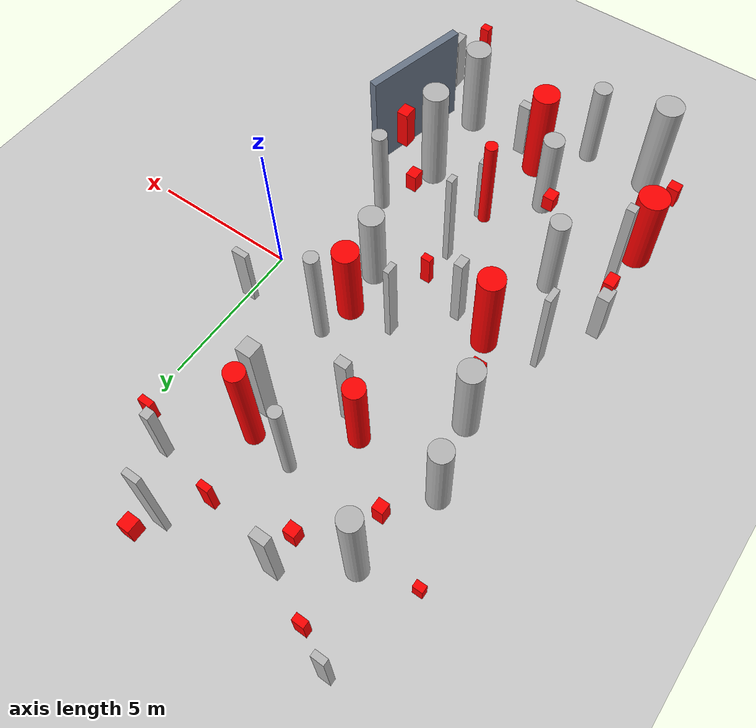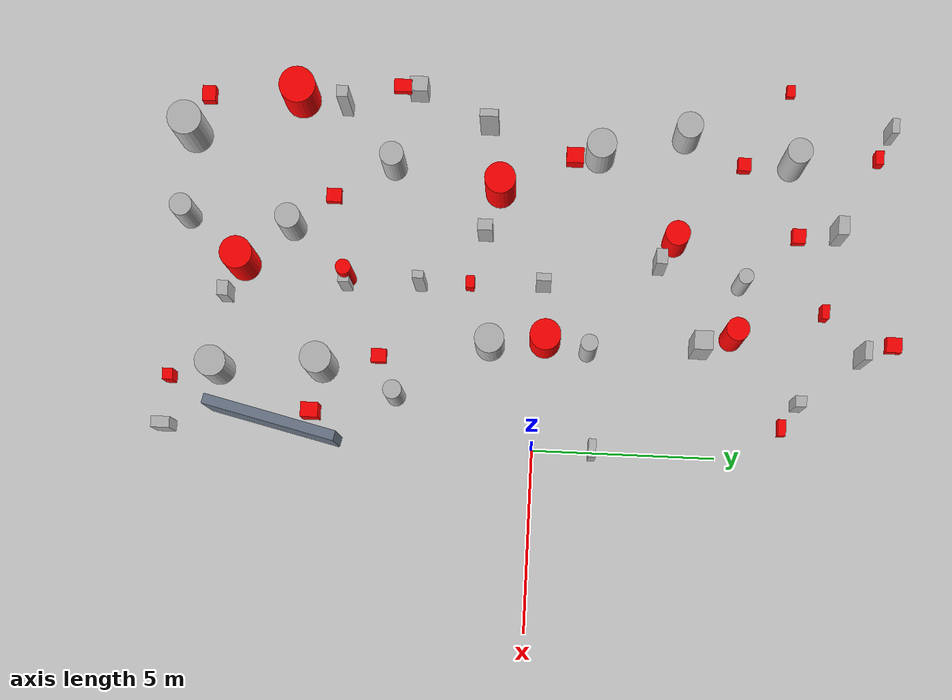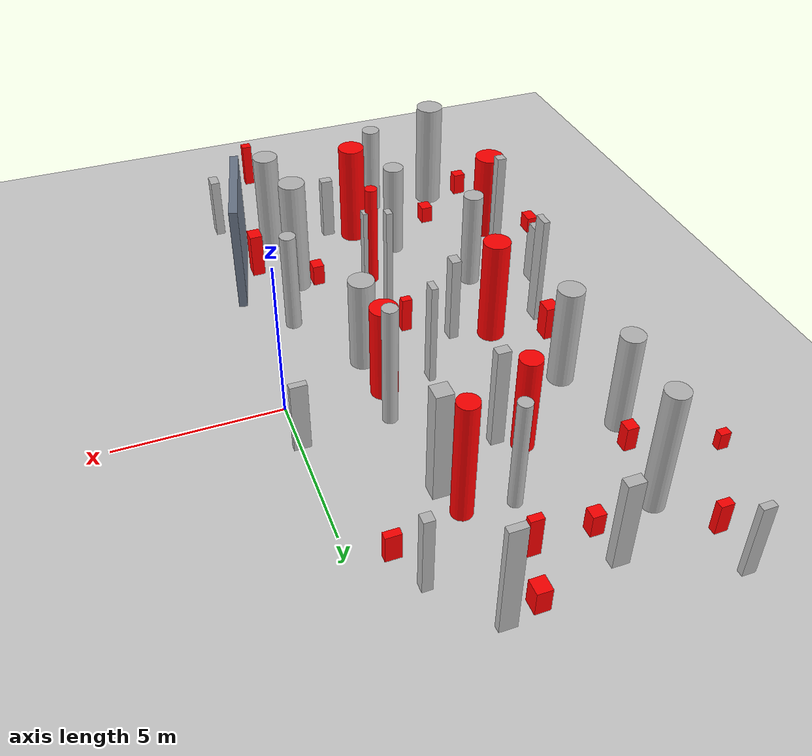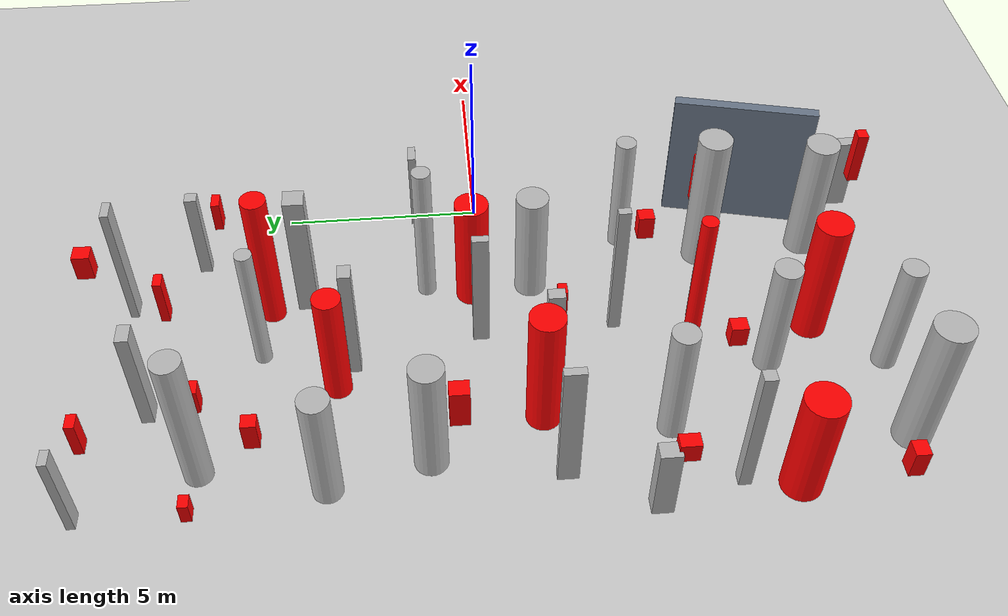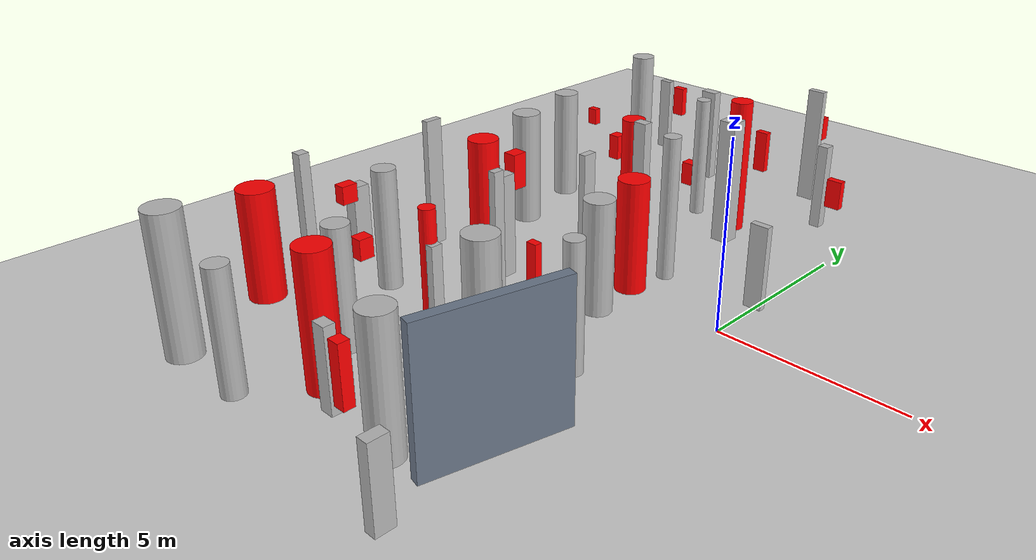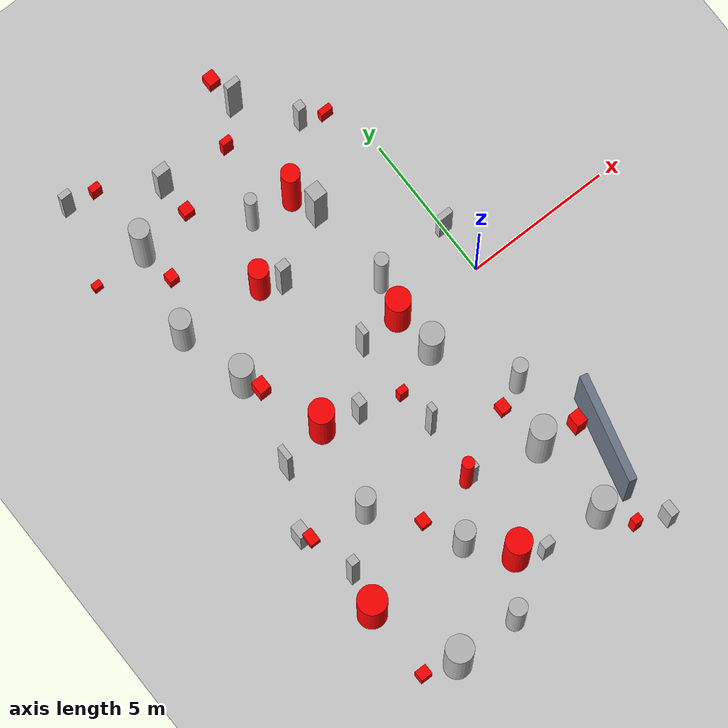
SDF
<sdf version="1.7">
 <world name="default">
  <model name="ground_plane">
   <static>1</static>
   <link name="link">
    <collision name="collision">
     <geometry><plane><normal>0 0 1</normal><size>100 100</size></plane></geometry>
     <surface>
      <contact><collide_bitmask>65535</collide_bitmask></contact>
      <friction><ode><mu>100</mu><mu2>50</mu2></ode></friction>
     </surface>
    </collision>
    <visual name="visual">
     <cast_shadows>0</cast_shadows>
     <geometry><plane><normal>0 0 1</normal><size>100 100</size></plane></geometry>
     <material>
      <script><uri>file://media/materials/scripts/gazebo.material</uri><name>Gazebo/Grey</name></script>
     </material>
    </visual>
   </link>
  </model>
  <model name="cylinder_3_0.9_0.9_3.8">
   <static>true</static>
   <pose>-8.257414005969185 -9.595632051193485 1.8890783754749252 0 0 0</pose>
   <link name="link">
    <collision name="collision">
     <geometry>
      <cylinder><radius>0.46100364447404574</radius><length>3.7781567509498504</length></cylinder>
     </geometry>
    </collision>
    <visual name="visual">
     <geometry>
      <cylinder><radius>0.46100364447404574</radius><length>3.7781567509498504</length></cylinder>
     </geometry>
    </visual>
   </link>
  </model>
  <model name="cylinder_6_0.4_0.4_3.6">
   <static>true</static>
   <pose>-4.70888775790746 5.484673788684333 1.7842169744343241 0 0 0</pose>
   <link name="link">
    <collision name="collision">
     <geometry>
      <cylinder><radius>0.20563694013090655</radius><length>3.5684339488686483</length></cylinder>
     </geometry>
    </collision>
    <visual name="visual">
     <geometry>
      <cylinder><radius>0.20563694013090655</radius><length>3.5684339488686483</length></cylinder>
     </geometry>
    </visual>
   </link>
  </model>
  <model name="cylinder_8_0.8_0.8_3.1">
   <static>true</static>
   <pose>-2.80984198852428 -1.259360924013171 1.530112735814635 0 0 0</pose>
   <link name="link">
    <collision name="collision">
     <geometry><cylinder><radius>0.4000300146337003</radius><length>3.06022547162927</length></cylinder></geometry>
    </collision>
    <visual name="visual">
     <geometry><cylinder><radius>0.4000300146337003</radius><length>3.06022547162927</length></cylinder></geometry>
    </visual>
   </link>
  </model>
  <model name="cylinder_9_0.5_0.5_4.0">
   <static>true</static>
   <pose>-2.725784581147548 1.4039354083575928 1.994186919029613 0 0 0</pose>
   <link name="link">
    <collision name="collision">
     <geometry>
      <cylinder><radius>0.23061344322440844</radius><length>3.988373838059226</length></cylinder>
     </geometry>
    </collision>
    <visual name="visual">
     <geometry>
      <cylinder><radius>0.23061344322440844</radius><length>3.988373838059226</length></cylinder>
     </geometry>
    </visual>
   </link>
  </model>
  <model name="cylinder_10_0.7_0.7_3.3">
   <static>true</static>
   <pose>-5.822464878103306 -6.773809642300074 1.626645801269891 0 0 0</pose>
   <link name="link">
    <collision name="collision">
     <geometry>
      <cylinder><radius>0.3398932318568919</radius><length>3.253291602539782</length></cylinder>
     </geometry>
    </collision>
    <visual name="visual">
     <geometry>
      <cylinder><radius>0.3398932318568919</radius><length>3.253291602539782</length></cylinder>
     </geometry>
    </visual>
   </link>
  </model>
  <model name="cylinder_11_0.7_0.7_4.0">
   <static>true</static>
   <pose>-8.057974484138775 6.758898149976078 1.988229732506698 0 0 0</pose>
   <link name="link">
    <collision name="collision">
     <geometry>
      <cylinder><radius>0.3405953604943105</radius><length>3.976459465013396</length></cylinder>
     </geometry>
    </collision>
    <visual name="visual">
     <geometry>
      <cylinder><radius>0.3405953604943105</radius><length>3.976459465013396</length></cylinder>
     </geometry>
    </visual>
   </link>
  </model>
  <model name="cylinder_13_0.6_0.6_3.3">
   <static>true</static>
   <pose>-7.596068775736622 -4.077196049557101 1.658991589696988 0 0 0</pose>
   <link name="link">
    <collision name="collision">
     <geometry><cylinder><radius>0.324278898354401</radius><length>3.317983179393976</length></cylinder></geometry>
    </collision>
    <visual name="visual">
     <geometry><cylinder><radius>0.324278898354401</radius><length>3.317983179393976</length></cylinder></geometry>
    </visual>
   </link>
  </model>
  <model name="cylinder_14_0.7_0.7_3.3">
   <static>true</static>
   <pose>-8.717050073024312 3.849442387400397 1.6326947454697227 0 0 0</pose>
   <link name="link">
    <collision name="collision">
     <geometry>
      <cylinder><radius>0.3569744160400099</radius><length>3.2653894909394454</length></cylinder>
     </geometry>
    </collision>
    <visual name="visual">
     <geometry>
      <cylinder><radius>0.3569744160400099</radius><length>3.2653894909394454</length></cylinder>
     </geometry>
    </visual>
   </link>
  </model>
  <model name="cylinder_15_0.8_0.8_3.3">
   <static>true</static>
   <pose>-8.121189784831166 1.5189299111235854 1.6592844762256618 0 0 0</pose>
   <link name="link">
    <collision name="collision">
     <geometry>
      <cylinder><radius>0.4002231139891045</radius><length>3.3185689524513236</length></cylinder>
     </geometry>
    </collision>
    <visual name="visual">
     <geometry>
      <cylinder><radius>0.4002231139891045</radius><length>3.3185689524513236</length></cylinder>
     </geometry>
    </visual>
   </link>
  </model>
  <model name="cylinder_22_0.8_0.8_3.5">
   <static>true</static>
   <pose>-1.8563340554800067 -8.61666009089724 1.7267713413390344 0 0 0</pose>
   <link name="link">
    <collision name="collision">
     <geometry>
      <cylinder><radius>0.4166166798411044</radius><length>3.453542682678069</length></cylinder>
     </geometry>
    </collision>
    <visual name="visual">
     <geometry>
      <cylinder><radius>0.4166166798411044</radius><length>3.453542682678069</length></cylinder>
     </geometry>
    </visual>
   </link>
  </model>
  <model name="cylinder_24_0.6_0.6_3.2">
   <static>true</static>
   <pose>-6.000069502071998 -9.62956411078772 1.61196234403019 0 0 0</pose>
   <link name="link">
    <collision name="collision">
     <geometry>
      <cylinder><radius>0.30360550420907084</radius><length>3.22392468806038</length></cylinder>
     </geometry>
    </collision>
    <visual name="visual">
     <geometry>
      <cylinder><radius>0.30360550420907084</radius><length>3.22392468806038</length></cylinder>
     </geometry>
    </visual>
   </link>
  </model>
  <model name="cylinder_26_0.8_0.8_3.9">
   <static>true</static>
   <pose>-2.0355787556781624 -5.803125020497557 1.9721861949919668 0 0 0</pose>
   <link name="link">
    <collision name="collision">
     <geometry>
      <cylinder><radius>0.42186523851478624</radius><length>3.9443723899839336</length></cylinder>
     </geometry>
    </collision>
    <visual name="visual">
     <geometry>
      <cylinder><radius>0.42186523851478624</radius><length>3.9443723899839336</length></cylinder>
     </geometry>
    </visual>
   </link>
  </model>
  <model name="cylinder_27_0.5_0.5_3.4">
   <static>true</static>
   <pose>-1.3116674888375845 -3.7640823601179485 1.6888759196462404 0 0 0</pose>
   <link name="link">
    <collision name="collision">
     <geometry>
      <cylinder><radius>0.25388110326789043</radius><length>3.377751839292481</length></cylinder>
     </geometry>
    </collision>
    <visual name="visual">
     <geometry>
      <cylinder><radius>0.25388110326789043</radius><length>3.377751839292481</length></cylinder>
     </geometry>
    </visual>
   </link>
  </model>
  <model name="box_0_0.3_0.4_2.9">
   <static>true</static>
   <pose>-5.850598491177812 -1.5062906249698749 1.4635754243648107 0 0 0</pose>
   <link name="link">
    <collision name="collision"><geometry><box><size>0.3 0.4 2.9</size></box></geometry></collision>
    <visual name="visual"><geometry><box><size>0.3 0.4 2.9</size></box></geometry></visual>
   </link>
  </model>
  <model name="box_2_0.5_0.2_3.5">
   <static>true</static>
   <pose>-2.8877452430008876 8.808638905056261 1.7486636198505474 0 0 0</pose>
   <link name="link">
    <collision name="collision"><geometry><box><size>0.5 0.2 3.5</size></box></geometry></collision>
    <visual name="visual"><geometry><box><size>0.5 0.2 3.5</size></box></geometry></visual>
   </link>
  </model>
  <model name="box_5_0.5_0.3_2.9">
   <static>true</static>
   <pose>-6.257382164983105 8.07967909856474 1.4569114216457657 0 0 0</pose>
   <link name="link">
    <collision name="collision"><geometry><box><size>0.5 0.3 2.9</size></box></geometry></collision>
    <visual name="visual"><geometry><box><size>0.5 0.3 2.9</size></box></geometry></visual>
   </link>
  </model>
  <model name="box_6_0.2_0.5_3.7">
   <static>true</static>
   <pose>-8.745740959533086 -1.519354962203161 1.849038308428511 0 0 0</pose>
   <link name="link">
    <collision name="collision"><geometry><box><size>0.2 0.5 3.7</size></box></geometry></collision>
    <visual name="visual"><geometry><box><size>0.2 0.5 3.7</size></box></geometry></visual>
   </link>
  </model>
  <model name="box_8_0.4_0.3_3.3">
   <static>true</static>
   <pose>-5.17162759846852 3.250091430653519 1.6658591175591877 0 0 0</pose>
   <link name="link">
    <collision name="collision"><geometry><box><size>0.4 0.3 3.3</size></box></geometry></collision>
    <visual name="visual"><geometry><box><size>0.4 0.3 3.3</size></box></geometry></visual>
   </link>
  </model>
  <model name="box_12_0.3_0.3_2.7">
   <static>true</static>
   <pose>-4.320000464757978 -5.23173438151884 1.3679275805370414 0 0 0</pose>
   <link name="link">
    <collision name="collision"><geometry><box><size>0.3 0.3 2.7</size></box></geometry></collision>
    <visual name="visual"><geometry><box><size>0.3 0.3 2.7</size></box></geometry></visual>
   </link>
  </model>
  <model name="box_13_0.5_0.5_3.6">
   <static>true</static>
   <pose>-2.962140076139148 4.428133359199049 1.8130538632474607 0 0 0</pose>
   <link name="link">
    <collision name="collision"><geometry><box><size>0.5 0.5 3.6</size></box></geometry></collision>
    <visual name="visual"><geometry><box><size>0.5 0.5 3.6</size></box></geometry></visual>
   </link>
  </model>
  <model name="box_14_0.5_0.2_2.3">
   <static>true</static>
   <pose>-0.04446184349316429 1.6216385934412614 1.1690254061291614 0 0 0</pose>
   <link name="link">
    <collision name="collision"><geometry><box><size>0.5 0.2 2.3</size></box></geometry></collision>
    <visual name="visual"><geometry><box><size>0.5 0.2 2.3</size></box></geometry></visual>
   </link>
  </model>
  <model name="box_15_0.3_0.3_2.5">
   <static>true</static>
   <pose>-1.5258729308905439 7.142498350091346 1.271252076761864 0 0 0</pose>
   <link name="link">
    <collision name="collision"><geometry><box><size>0.3 0.3 2.5</size></box></geometry></collision>
    <visual name="visual"><geometry><box><size>0.3 0.3 2.5</size></box></geometry></visual>
   </link>
  </model>
  <model name="box_19_0.4_0.2_2.4">
   <static>true</static>
   <pose>-9.063872905756226 9.414628855412657 1.1785799680576563 0 0 0</pose>
   <link name="link">
    <collision name="collision"><geometry><box><size>0.4 0.2 2.4</size></box></geometry></collision>
    <visual name="visual"><geometry><box><size>0.4 0.2 2.4</size></box></geometry></visual>
   </link>
  </model>
  <model name="box_20_0.4_0.3_2.2">
   <static>true</static>
   <pose>-3.9160261680118436 -8.492818618333192 1.107617705149582 0 0 0</pose>
   <link name="link">
    <collision name="collision"><geometry><box><size>0.4 0.3 2.2</size></box></geometry></collision>
    <visual name="visual"><geometry><box><size>0.4 0.3 2.2</size></box></geometry></visual>
   </link>
  </model>
  <model name="box_21_0.3_0.5_2.1">
   <static>true</static>
   <pose>-0.24647352923584886 -9.989080702060086 1.0635537748361585 0 0 0</pose>
   <link name="link">
    <collision name="collision"><geometry><box><size>0.3 0.5 2.1</size></box></geometry></collision>
    <visual name="visual"><geometry><box><size>0.3 0.5 2.1</size></box></geometry></visual>
   </link>
  </model>
  <model name="box_22_0.2_0.3_3.9">
   <static>true</static>
   <pose>-4.343262956478342 -3.207379116676017 1.96319729526038 0 0 0</pose>
   <link name="link">
    <collision name="collision"><geometry><box><size>0.2 0.3 3.9</size></box></geometry></collision>
    <visual name="visual"><geometry><box><size>0.2 0.3 3.9</size></box></geometry></visual>
   </link>
  </model>
  <model name="box_26_0.2_0.4_3.4">
   <static>true</static>
   <pose>-4.467005395816209 0.12685838647608305 1.706410577667011 0 0 0</pose>
   <link name="link">
    <collision name="collision"><geometry><box><size>0.2 0.4 3.4</size></box></geometry></collision>
    <visual name="visual"><geometry><box><size>0.2 0.4 3.4</size></box></geometry></visual>
   </link>
  </model>
  <model name="box_28_0.3_0.3_3.7">
   <static>true</static>
   <pose>-9.152719058171135 -5.44518013305427 1.8369903652886839 0 0 0</pose>
   <link name="link">
    <collision name="collision"><geometry><box><size>0.3 0.3 3.7</size></box></geometry></collision>
    <visual name="visual"><geometry><box><size>0.3 0.3 3.7</size></box></geometry></visual>
   </link>
  </model>
  <model name="box_29_0.4_0.5_2.1">
   <static>true</static>
   <pose>-9.68523520659075 -3.4829031599240756 1.028362934230075 0 0 0</pose>
   <link name="link">
    <collision name="collision"><geometry><box><size>0.4 0.5 2.1</size></box></geometry></collision>
    <visual name="visual"><geometry><box><size>0.4 0.5 2.1</size></box></geometry></visual>
   </link>
  </model>
  <model name="large_single_wall_00">
   <static>true</static>
   <link name="link">
    <collision name="collision_0">
     <pose>-0.420944 -6.982706 1.804843 0 0 1.336323</pose>
     <geometry><box><size>3.624977 0.273582 3.609686</size></box></geometry>
    </collision>
    <visual name="visual_0">
     <pose>-0.420944 -6.982706 1.804843 0 0 1.336323</pose>
     <geometry><box><size>3.624977 0.273582 3.609686</size></box></geometry>
     <material>
      <ambient>0.32 0.36 0.42 1</ambient>
      <diffuse>0.42 0.47 0.54 1</diffuse>
      <specular>0.12 0.12 0.12 1</specular>
     </material>
    </visual>
   </link>
  </model>
  <model name="dynamic_cylinder_1_0.4_0.4_3.6">
   <static>true</static>
   <pose>-4.486693441602288 -5.208399215121817 1.7831309271400164 0 0 0</pose>
   <link name="link">
    <collision name="collision">
     <geometry>
      <cylinder><radius>0.20545190578287137</radius><length>3.566261854280033</length></cylinder>
     </geometry>
    </collision>
    <visual name="visual">
     <geometry>
      <cylinder><radius>0.20545190578287137</radius><length>3.566261854280033</length></cylinder>
     </geometry>
     <material><ambient>1 0 0 1</ambient><diffuse>1 0 0 1</diffuse><specular>0.5 0.5 0.5 1</specular></material>
    </visual>
   </link>
   <plugin name="obstacle_motion" filename="libobstaclePathPlugin.so">
    <orientation>false</orientation>
    <loop>0</loop>
    <velocity>0.07923702594059778</velocity>
    <path>
     <waypoint>-4.486693441602288 -5.208399215121817 1.7831309271400164</waypoint>
     <waypoint>4.339501459630921 1.6896598752854475 1.7831309271400164</waypoint>
    </path>
   </plugin>
  </model>
  <model name="dynamic_cylinder_6_1.0_1.0_3.0">
   <static>true</static>
   <pose>-9.374149441804525 -6.697837452561595 1.5198916490142225 0 0 0</pose>
   <link name="link">
    <collision name="collision">
     <geometry>
      <cylinder><radius>0.49024821491047754</radius><length>3.039783298028445</length></cylinder>
     </geometry>
    </collision>
    <visual name="visual">
     <geometry>
      <cylinder><radius>0.49024821491047754</radius><length>3.039783298028445</length></cylinder>
     </geometry>
     <material><ambient>1 0 0 1</ambient><diffuse>1 0 0 1</diffuse><specular>0.5 0.5 0.5 1</specular></material>
    </visual>
   </link>
   <plugin name="obstacle_motion" filename="libobstaclePathPlugin.so">
    <orientation>false</orientation>
    <loop>0</loop>
    <velocity>0.013836251172974823</velocity>
    <path>
     <waypoint>-9.374149441804525 -6.697837452561595 1.5198916490142225</waypoint>
     <waypoint>1.8558258309793674 1.0282053830763949 1.5198916490142225</waypoint>
    </path>
   </plugin>
  </model>
  <model name="dynamic_cylinder_10_0.8_0.8_3.5">
   <static>true</static>
   <pose>-7.055046546560206 -1.151683692220038 1.7425484227156454 0 0 0</pose>
   <link name="link">
    <collision name="collision">
     <geometry>
      <cylinder><radius>0.4206228080077576</radius><length>3.4850968454312907</length></cylinder>
     </geometry>
    </collision>
    <visual name="visual">
     <geometry>
      <cylinder><radius>0.4206228080077576</radius><length>3.4850968454312907</length></cylinder>
     </geometry>
     <material><ambient>1 0 0 1</ambient><diffuse>1 0 0 1</diffuse><specular>0.5 0.5 0.5 1</specular></material>
    </visual>
   </link>
   <plugin name="obstacle_motion" filename="libobstaclePathPlugin.so">
    <orientation>false</orientation>
    <loop>0</loop>
    <velocity>0.6484137022418283</velocity>
    <path>
     <waypoint>-7.055046546560206 -1.151683692220038 1.7425484227156454</waypoint>
     <waypoint>7.20562473036609 2.558344863923381 1.7425484227156454</waypoint>
    </path>
   </plugin>
  </model>
  <model name="dynamic_cylinder_13_0.7_0.7_3.2">
   <static>true</static>
   <pose>-5.823467504325313 3.64859146735226 1.5801765726902441 0 0 0</pose>
   <link name="link">
    <collision name="collision">
     <geometry>
      <cylinder><radius>0.3353755884349526</radius><length>3.1603531453804883</length></cylinder>
     </geometry>
    </collision>
    <visual name="visual">
     <geometry>
      <cylinder><radius>0.3353755884349526</radius><length>3.1603531453804883</length></cylinder>
     </geometry>
     <material><ambient>1 0 0 1</ambient><diffuse>1 0 0 1</diffuse><specular>0.5 0.5 0.5 1</specular></material>
    </visual>
   </link>
   <plugin name="obstacle_motion" filename="libobstaclePathPlugin.so">
    <orientation>false</orientation>
    <loop>0</loop>
    <velocity>0.9641009397724625</velocity>
    <path>
     <waypoint>-5.823467504325313 3.64859146735226 1.5801765726902441</waypoint>
     <waypoint>-3.5847887617008234 1.1841880286207718 1.5801765726902441</waypoint>
    </path>
   </plugin>
  </model>
  <model name="dynamic_cylinder_16_0.8_0.8_3.1">
   <static>true</static>
   <pose>-2.9706258450502987 0.2361312013207395 1.550488139860272 0 0 0</pose>
   <link name="link">
    <collision name="collision">
     <geometry>
      <cylinder><radius>0.4194350747477036</radius><length>3.100976279720544</length></cylinder>
     </geometry>
    </collision>
    <visual name="visual">
     <geometry>
      <cylinder><radius>0.4194350747477036</radius><length>3.100976279720544</length></cylinder>
     </geometry>
     <material><ambient>1 0 0 1</ambient><diffuse>1 0 0 1</diffuse><specular>0.5 0.5 0.5 1</specular></material>
    </visual>
   </link>
   <plugin name="obstacle_motion" filename="libobstaclePathPlugin.so">
    <orientation>false</orientation>
    <loop>0</loop>
    <velocity>0.42064701703371876</velocity>
    <path>
     <waypoint>-2.9706258450502987 0.2361312013207395 1.550488139860272</waypoint>
     <waypoint>-6.503268735117818 8.721180410096128 1.550488139860272</waypoint>
    </path>
   </plugin>
  </model>
  <model name="dynamic_cylinder_17_0.6_0.6_3.9">
   <static>true</static>
   <pose>-3.2729868940614804 5.30917940664819 1.9476484183770708 0 0 0</pose>
   <link name="link">
    <collision name="collision">
     <geometry>
      <cylinder><radius>0.3118775288784784</radius><length>3.8952968367541416</length></cylinder>
     </geometry>
    </collision>
    <visual name="visual">
     <geometry>
      <cylinder><radius>0.3118775288784784</radius><length>3.8952968367541416</length></cylinder>
     </geometry>
     <material><ambient>1 0 0 1</ambient><diffuse>1 0 0 1</diffuse><specular>0.5 0.5 0.5 1</specular></material>
    </visual>
   </link>
   <plugin name="obstacle_motion" filename="libobstaclePathPlugin.so">
    <orientation>false</orientation>
    <loop>0</loop>
    <velocity>0.096256724624312</velocity>
    <path>
     <waypoint>-3.2729868940614804 5.30917940664819 1.9476484183770708</waypoint>
     <waypoint>-2.5292438569483133 4.160224801386612 1.9476484183770708</waypoint>
    </path>
   </plugin>
  </model>
  <model name="dynamic_cylinder_19_0.9_0.9_3.5">
   <static>true</static>
   <pose>-4.756429574118382 -8.07396395778449 1.7693759292218283 0 0 0</pose>
   <link name="link">
    <collision name="collision">
     <geometry><cylinder><radius>0.43641061061009</radius><length>3.5387518584436566</length></cylinder></geometry>
    </collision>
    <visual name="visual">
     <geometry><cylinder><radius>0.43641061061009</radius><length>3.5387518584436566</length></cylinder></geometry>
     <material><ambient>1 0 0 1</ambient><diffuse>1 0 0 1</diffuse><specular>0.5 0.5 0.5 1</specular></material>
    </visual>
   </link>
   <plugin name="obstacle_motion" filename="libobstaclePathPlugin.so">
    <orientation>false</orientation>
    <loop>0</loop>
    <velocity>0.8113770403016125</velocity>
    <path>
     <waypoint>-4.756429574118382 -8.07396395778449 1.7693759292218283</waypoint>
     <waypoint>-8.181481403592393 5.642707268488318 1.7693759292218283</waypoint>
    </path>
   </plugin>
  </model>
  <model name="dynamic_box_0_0.3_0.5_0.5">
   <static>true</static>
   <pose>-9.59026809460131 -3.8944367915790146 1.98426130539906 0 0 0</pose>
   <link name="link">
    <collision name="collision">
     <geometry><box><size>0.34233598166544 0.4729223803958809 0.5269902914316932</size></box></geometry>
    </collision>
    <visual name="visual">
     <geometry><box><size>0.34233598166544 0.4729223803958809 0.5269902914316932</size></box></geometry>
     <material><ambient>1 0 0 1</ambient><diffuse>1 0 0 1</diffuse><specular>0.5 0.5 0.5 1</specular></material>
    </visual>
   </link>
   <plugin name="obstacle_motion" filename="libobstaclePathPlugin.so">
    <orientation>false</orientation>
    <loop>0</loop>
    <velocity>0.6557324796954414</velocity>
    <path>
     <waypoint>-9.59026809460131 -3.8944367915790146 1.98426130539906</waypoint>
     <waypoint>6.070089964542937 4.930217199653201 0.30975191906728644</waypoint>
    </path>
   </plugin>
  </model>
  <model name="dynamic_box_1_0.4_0.4_0.7">
   <static>true</static>
   <pose>-2.307403679889213 -4.229499942742145 1.4834047590709418 0 0 0</pose>
   <link name="link">
    <collision name="collision">
     <geometry><box><size>0.3632213401066679 0.409211247715175 0.6821976449230329</size></box></geometry>
    </collision>
    <visual name="visual">
     <geometry><box><size>0.3632213401066679 0.409211247715175 0.6821976449230329</size></box></geometry>
     <material><ambient>1 0 0 1</ambient><diffuse>1 0 0 1</diffuse><specular>0.5 0.5 0.5 1</specular></material>
    </visual>
   </link>
   <plugin name="obstacle_motion" filename="libobstaclePathPlugin.so">
    <orientation>false</orientation>
    <loop>0</loop>
    <velocity>0.5628322226568963</velocity>
    <path>
     <waypoint>-2.307403679889213 -4.229499942742145 1.4834047590709418</waypoint>
     <waypoint>8.29388599099389 4.772774229245 2.0544313864201373</waypoint>
    </path>
   </plugin>
  </model>
  <model name="dynamic_box_2_0.4_0.2_1.3">
   <static>true</static>
   <pose>-3.9853487209369254 7.7398659407576 1.5496704012619382 0 0 0</pose>
   <link name="link">
    <collision name="collision">
     <geometry><box><size>0.37937631208115075 0.20753286145314295 1.2558082877570287</size></box></geometry>
    </collision>
    <visual name="visual">
     <geometry><box><size>0.37937631208115075 0.20753286145314295 1.2558082877570287</size></box></geometry>
     <material><ambient>1 0 0 1</ambient><diffuse>1 0 0 1</diffuse><specular>0.5 0.5 0.5 1</specular></material>
    </visual>
   </link>
   <plugin name="obstacle_motion" filename="libobstaclePathPlugin.so">
    <orientation>false</orientation>
    <loop>0</loop>
    <velocity>0.612838726216401</velocity>
    <path>
     <waypoint>-3.9853487209369254 7.7398659407576 1.5496704012619382</waypoint>
     <waypoint>-5.49169692523543 -3.5712282166991205 0.6334460571298782</waypoint>
    </path>
   </plugin>
  </model>
  <model name="dynamic_box_3_0.3_0.3_1.4">
   <static>true</static>
   <pose>-1.4578638308786362 -9.72436190750835 2.670507957357454 0 0 0</pose>
   <link name="link">
    <collision name="collision">
     <geometry><box><size>0.29941147724810857 0.26957421302425083 1.438075781711365</size></box></geometry>
    </collision>
    <visual name="visual">
     <geometry><box><size>0.29941147724810857 0.26957421302425083 1.438075781711365</size></box></geometry>
     <material><ambient>1 0 0 1</ambient><diffuse>1 0 0 1</diffuse><specular>0.5 0.5 0.5 1</specular></material>
    </visual>
   </link>
   <plugin name="obstacle_motion" filename="libobstaclePathPlugin.so">
    <orientation>false</orientation>
    <loop>0</loop>
    <velocity>0.8866992695426443</velocity>
    <path>
     <waypoint>-1.4578638308786362 -9.72436190750835 2.670507957357454</waypoint>
     <waypoint>-7.349380450192733 7.028453531844788 2.2824840641171873</waypoint>
    </path>
   </plugin>
  </model>
  <model name="dynamic_box_4_0.4_0.5_1.5">
   <static>true</static>
   <pose>-0.7465378984077287 -6.005921436019353 1.4718642153082862 0 0 0</pose>
   <link name="link">
    <collision name="collision">
     <geometry><box><size>0.39746237390806954 0.4728673705363477 1.471392821735408</size></box></geometry>
    </collision>
    <visual name="visual">
     <geometry><box><size>0.39746237390806954 0.4728673705363477 1.471392821735408</size></box></geometry>
     <material><ambient>1 0 0 1</ambient><diffuse>1 0 0 1</diffuse><specular>0.5 0.5 0.5 1</specular></material>
    </visual>
   </link>
   <plugin name="obstacle_motion" filename="libobstaclePathPlugin.so">
    <orientation>false</orientation>
    <loop>0</loop>
    <velocity>0.523113200235428</velocity>
    <path>
     <waypoint>-0.7465378984077287 -6.005921436019353 1.4718642153082862</waypoint>
     <waypoint>0.8293251121790646 2.658342245531591 1.6889839659533405</waypoint>
    </path>
   </plugin>
  </model>
  <model name="dynamic_box_6_0.4_0.4_0.7">
   <static>true</static>
   <pose>-6.151059727932761 7.048887729954911 0.41290209360534813 0 0 0</pose>
   <link name="link">
    <collision name="collision">
     <geometry><box><size>0.3942657297780058 0.36890715101454985 0.7277135901589646</size></box></geometry>
    </collision>
    <visual name="visual">
     <geometry><box><size>0.3942657297780058 0.36890715101454985 0.7277135901589646</size></box></geometry>
     <material><ambient>1 0 0 1</ambient><diffuse>1 0 0 1</diffuse><specular>0.5 0.5 0.5 1</specular></material>
    </visual>
   </link>
   <plugin name="obstacle_motion" filename="libobstaclePathPlugin.so">
    <orientation>false</orientation>
    <loop>0</loop>
    <velocity>0.8637198537791435</velocity>
    <path>
     <waypoint>-6.151059727932761 7.048887729954911 0.41290209360534813</waypoint>
     <waypoint>-1.367654994262879 6.018727774061814 0.5643732041342625</waypoint>
    </path>
   </plugin>
  </model>
  <model name="dynamic_box_7_0.4_0.5_1.1">
   <static>true</static>
   <pose>-7.8976354107438596 0.8316932141724576 1.7932111018089576 0 0 0</pose>
   <link name="link">
    <collision name="collision">
     <geometry><box><size>0.4092144397052275 0.4686045991524566 1.07530670672029</size></box></geometry>
    </collision>
    <visual name="visual">
     <geometry><box><size>0.4092144397052275 0.4686045991524566 1.07530670672029</size></box></geometry>
     <material><ambient>1 0 0 1</ambient><diffuse>1 0 0 1</diffuse><specular>0.5 0.5 0.5 1</specular></material>
    </visual>
   </link>
   <plugin name="obstacle_motion" filename="libobstaclePathPlugin.so">
    <orientation>false</orientation>
    <loop>0</loop>
    <velocity>0.572507794713556</velocity>
    <path>
     <waypoint>-7.8976354107438596 0.8316932141724576 1.7932111018089576</waypoint>
     <waypoint>-3.71894605986105 6.560007458537944 2.101810974874501</waypoint>
    </path>
   </plugin>
  </model>
  <model name="dynamic_box_9_0.3_0.2_0.5">
   <static>true</static>
   <pose>-9.963610104389415 6.598347303909784 1.5578137870524584 0 0 0</pose>
   <link name="link">
    <collision name="collision">
     <geometry><box><size>0.31280520049145094 0.22553177243407163 0.5291137978327144</size></box></geometry>
    </collision>
    <visual name="visual">
     <geometry><box><size>0.31280520049145094 0.22553177243407163 0.5291137978327144</size></box></geometry>
     <material><ambient>1 0 0 1</ambient><diffuse>1 0 0 1</diffuse><specular>0.5 0.5 0.5 1</specular></material>
    </visual>
   </link>
   <plugin name="obstacle_motion" filename="libobstaclePathPlugin.so">
    <orientation>false</orientation>
    <loop>0</loop>
    <velocity>0.5576405913689442</velocity>
    <path>
     <waypoint>-9.963610104389415 6.598347303909784 1.5578137870524584</waypoint>
     <waypoint>5.398442374637817 -0.5875360011039388 2.104943876198087</waypoint>
    </path>
   </plugin>
  </model>
  <model name="dynamic_box_13_0.4_0.4_0.7">
   <static>true</static>
   <pose>-3.1508424471819585 9.584867479560536 2.0483977607084816 0 0 0</pose>
   <link name="link">
    <collision name="collision">
     <geometry><box><size>0.4014547175698947 0.4225365905371102 0.69752500637671</size></box></geometry>
    </collision>
    <visual name="visual">
     <geometry><box><size>0.4014547175698947 0.4225365905371102 0.69752500637671</size></box></geometry>
     <material><ambient>1 0 0 1</ambient><diffuse>1 0 0 1</diffuse><specular>0.5 0.5 0.5 1</specular></material>
    </visual>
   </link>
   <plugin name="obstacle_motion" filename="libobstaclePathPlugin.so">
    <orientation>false</orientation>
    <loop>0</loop>
    <velocity>0.7639359602730665</velocity>
    <path>
     <waypoint>-3.1508424471819585 9.584867479560536 2.0483977607084816</waypoint>
     <waypoint>8.098386026250763 1.4734702297911695 0.9370652078307158</waypoint>
    </path>
   </plugin>
  </model>
  <model name="dynamic_box_14_0.4_0.2_0.8">
   <static>true</static>
   <pose>-0.842624293147114 6.709187889539281 1.3480607362567003 0 0 0</pose>
   <link name="link">
    <collision name="collision">
     <geometry><box><size>0.44174924774164664 0.21352094821715026 0.8341776027693687</size></box></geometry>
    </collision>
    <visual name="visual">
     <geometry><box><size>0.44174924774164664 0.21352094821715026 0.8341776027693687</size></box></geometry>
     <material><ambient>1 0 0 1</ambient><diffuse>1 0 0 1</diffuse><specular>0.5 0.5 0.5 1</specular></material>
    </visual>
   </link>
   <plugin name="obstacle_motion" filename="libobstaclePathPlugin.so">
    <orientation>false</orientation>
    <loop>0</loop>
    <velocity>0.5801526085127164</velocity>
    <path>
     <waypoint>-0.842624293147114 6.709187889539281 1.3480607362567003</waypoint>
     <waypoint>-8.68835808659194 -5.469089354083061 2.405838470818561</waypoint>
    </path>
   </plugin>
  </model>
  <model name="dynamic_box_15_0.4_0.4_0.6">
   <static>true</static>
   <pose>-6.534700926482109 -5.607324007022214 2.0114034774451044 0 0 0</pose>
   <link name="link">
    <collision name="collision">
     <geometry><box><size>0.3620222242358647 0.40284202454417906 0.5520298120050424</size></box></geometry>
    </collision>
    <visual name="visual">
     <geometry><box><size>0.3620222242358647 0.40284202454417906 0.5520298120050424</size></box></geometry>
     <material><ambient>1 0 0 1</ambient><diffuse>1 0 0 1</diffuse><specular>0.5 0.5 0.5 1</specular></material>
    </visual>
   </link>
   <plugin name="obstacle_motion" filename="libobstaclePathPlugin.so">
    <orientation>false</orientation>
    <loop>0</loop>
    <velocity>0.8522868586418098</velocity>
    <path>
     <waypoint>-6.534700926482109 -5.607324007022214 2.0114034774451044</waypoint>
     <waypoint>-3.260773464523572 -1.047193147502432 1.0582863302492143</waypoint>
    </path>
   </plugin>
  </model>
  <model name="dynamic_box_16_0.3_0.2_1.2">
   <static>true</static>
   <pose>-4.435372206657133 -1.8617218334604635 0.9670281244862998 0 0 0</pose>
   <link name="link">
    <collision name="collision">
     <geometry><box><size>0.32491016674944845 0.23166490527829411 1.1634571998860077</size></box></geometry>
    </collision>
    <visual name="visual">
     <geometry><box><size>0.32491016674944845 0.23166490527829411 1.1634571998860077</size></box></geometry>
     <material><ambient>1 0 0 1</ambient><diffuse>1 0 0 1</diffuse><specular>0.5 0.5 0.5 1</specular></material>
    </visual>
   </link>
   <plugin name="obstacle_motion" filename="libobstaclePathPlugin.so">
    <orientation>false</orientation>
    <loop>0</loop>
    <velocity>0.7625798649964994</velocity>
    <path>
     <waypoint>-4.435372206657133 -1.8617218334604635 0.9670281244862998</waypoint>
     <waypoint>-1.606347371256045 3.069828235940677 2.47110668632794</waypoint>
    </path>
   </plugin>
  </model>
  <model name="dynamic_box_17_0.4_0.4_0.8">
   <static>true</static>
   <pose>-9.330857443588698 -9.227544599441933 0.6262646801713495 0 0 0</pose>
   <link name="link">
    <collision name="collision">
     <geometry><box><size>0.4120357164589233 0.3635603591495028 0.7840578902278372</size></box></geometry>
    </collision>
    <visual name="visual">
     <geometry><box><size>0.4120357164589233 0.3635603591495028 0.7840578902278372</size></box></geometry>
     <material><ambient>1 0 0 1</ambient><diffuse>1 0 0 1</diffuse><specular>0.5 0.5 0.5 1</specular></material>
    </visual>
   </link>
   <plugin name="obstacle_motion" filename="libobstaclePathPlugin.so">
    <orientation>false</orientation>
    <loop>0</loop>
    <velocity>0.7446260149047168</velocity>
    <path>
     <waypoint>-9.330857443588698 -9.227544599441933 0.6262646801713495</waypoint>
     <waypoint>2.5664996517014838 -1.709067655111054 2.0898802026385863</waypoint>
    </path>
   </plugin>
  </model>
  <model name="dynamic_box_18_0.4_0.4_0.8">
   <static>true</static>
   <pose>-7.929056113604556 5.432895799480402 1.301762367201903 0 0 0</pose>
   <link name="link">
    <collision name="collision">
     <geometry><box><size>0.35055090102111525 0.35090461517764443 0.7743682900876313</size></box></geometry>
    </collision>
    <visual name="visual">
     <geometry><box><size>0.35055090102111525 0.35090461517764443 0.7743682900876313</size></box></geometry>
     <material><ambient>1 0 0 1</ambient><diffuse>1 0 0 1</diffuse><specular>0.5 0.5 0.5 1</specular></material>
    </visual>
   </link>
   <plugin name="obstacle_motion" filename="libobstaclePathPlugin.so">
    <orientation>false</orientation>
    <loop>0</loop>
    <velocity>0.9761243110358531</velocity>
    <path>
     <waypoint>-7.929056113604556 5.432895799480402 1.301762367201903</waypoint>
     <waypoint>-7.34676088974936 -9.25577927382397 2.373940132423626</waypoint>
    </path>
   </plugin>
  </model>
  <model name="dynamic_box_19_0.4_0.2_0.9">
   <static>true</static>
   <pose>-8.178605632557332 9.0141163767595 1.9318750316710656 0 0 0</pose>
   <link name="link">
    <collision name="collision">
     <geometry><box><size>0.3674414020613998 0.22290319242716264 0.9321666051417837</size></box></geometry>
    </collision>
    <visual name="visual">
     <geometry><box><size>0.3674414020613998 0.22290319242716264 0.9321666051417837</size></box></geometry>
     <material><ambient>1 0 0 1</ambient><diffuse>1 0 0 1</diffuse><specular>0.5 0.5 0.5 1</specular></material>
    </visual>
   </link>
   <plugin name="obstacle_motion" filename="libobstaclePathPlugin.so">
    <orientation>false</orientation>
    <loop>0</loop>
    <velocity>0.6811294103661085</velocity>
    <path>
     <waypoint>-8.178605632557332 9.0141163767595 1.9318750316710656</waypoint>
     <waypoint>0.37455676319102293 -7.59485721852228 0.8174364415474629</waypoint>
    </path>
   </plugin>
  </model>
 </world>
</sdf>
